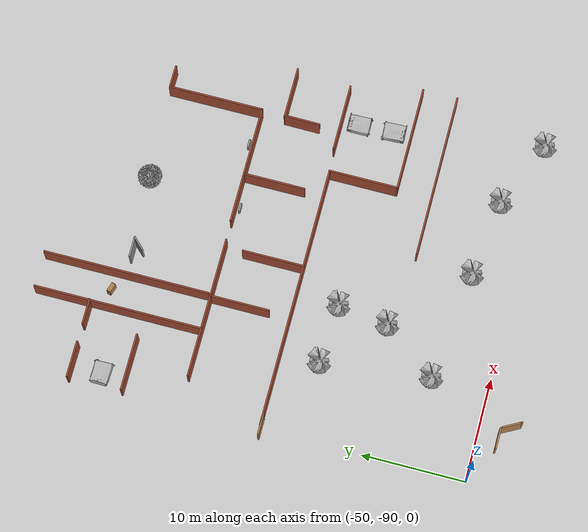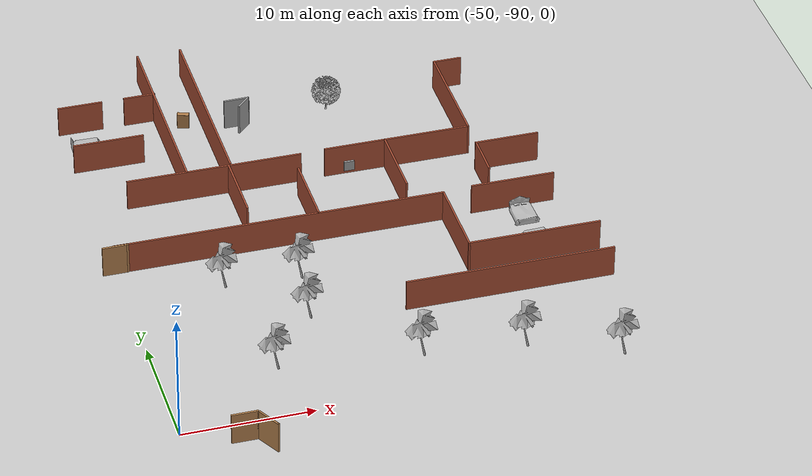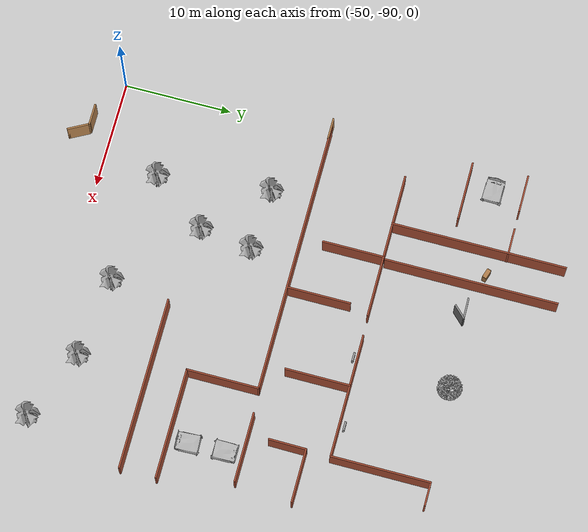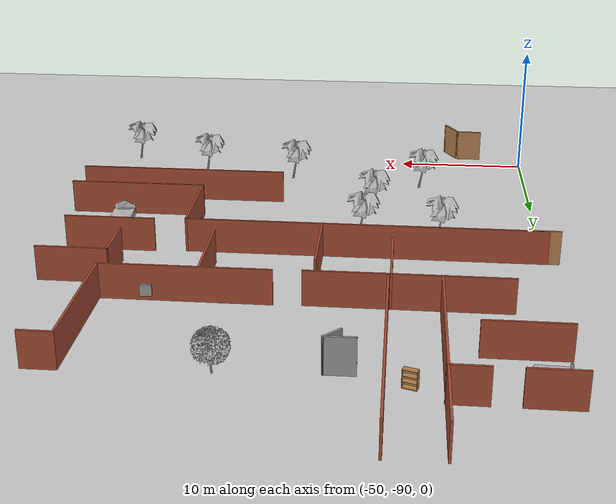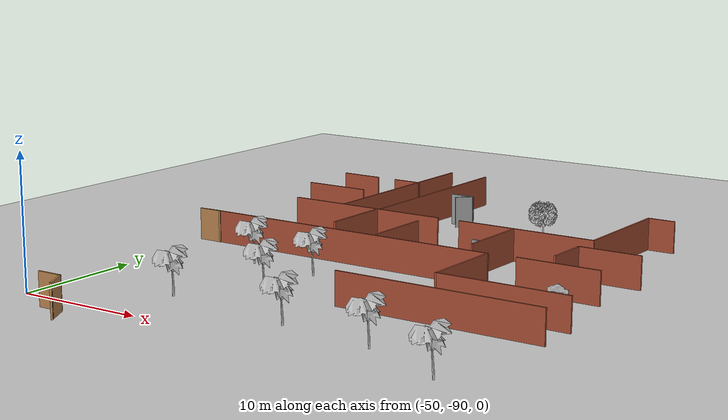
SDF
<sdf version="1.6">
 <world name="default">
  <model name="map_palace_v2_model_1_0">
   <pose>-3.1e-05 -55 0 0 -0 3.14</pose>
   <link name="Wall_225">
    <collision name="Wall_225_Collision">
     <geometry><box><size>6.5 0.15 2.5</size></box></geometry>
     <pose>0 0 1.25 0 -0 0</pose>
    </collision>
    <visual name="Wall_225_Visual">
     <pose>0 0 1.25 0 -0 0</pose>
     <geometry><box><size>6.5 0.15 2.5</size></box></geometry>
     <material>
      <script><uri>file://media/materials/scripts/gazebo.material</uri><name>Gazebo/Bricks</name></script>
      <ambient>1 1 1 1</ambient>
     </material>
     <meta><layer>0</layer></meta>
    </visual>
    <pose>19.2415 15.308 0 0 -0 0</pose>
   </link>
   <link name="Wall_229">
    <collision name="Wall_229_Collision">
     <geometry><box><size>5 0.15 2.5</size></box></geometry>
     <pose>0 0 1.25 0 -0 0</pose>
    </collision>
    <visual name="Wall_229_Visual">
     <pose>0 0 1.25 0 -0 0</pose>
     <geometry><box><size>5 0.15 2.5</size></box></geometry>
     <material>
      <script><uri>file://media/materials/scripts/gazebo.material</uri><name>Gazebo/Bricks</name></script>
      <ambient>1 1 1 1</ambient>
     </material>
     <meta><layer>0</layer></meta>
    </visual>
    <pose>18.0475 9.99625 0 0 -0 3.14159</pose>
   </link>
   <link name="Wall_231">
    <collision name="Wall_231_Collision">
     <geometry><box><size>3.52576 0.15 2.5</size></box></geometry>
     <pose>0 0 1.25 0 -0 0</pose>
    </collision>
    <visual name="Wall_231_Visual">
     <pose>0 0 1.25 0 -0 0</pose>
     <geometry><box><size>3.52576 0.15 2.5</size></box></geometry>
     <material>
      <script><uri>file://media/materials/scripts/gazebo.material</uri><name>Gazebo/Bricks</name></script>
      <ambient>1 1 1 1</ambient>
     </material>
     <meta><layer>0</layer></meta>
    </visual>
    <pose>20.49 11.684 0 0 -0 -1.58116</pose>
   </link>
   <link name="Wall_244">
    <collision name="Wall_244_Collision">
     <geometry><box><size>6 0.15 2.5</size></box></geometry>
     <pose>0 0 1.25 0 -0 0</pose>
    </collision>
    <visual name="Wall_244_Visual">
     <pose>0 0 1.25 0 -0 0</pose>
     <geometry><box><size>6 0.15 2.5</size></box></geometry>
     <material>
      <script><uri>file://media/materials/scripts/gazebo.material</uri><name>Gazebo/Bricks</name></script>
      <ambient>1 1 1 1</ambient>
     </material>
     <meta><layer>0</layer></meta>
    </visual>
    <pose>27.0679 10.7157 0 0 -0 1.5708</pose>
   </link>
   <link name="Wall_246">
    <collision name="Wall_246_Collision">
     <geometry><box><size>6 0.15 2.5</size></box></geometry>
     <pose>0 0 1.25 0 -0 0</pose>
    </collision>
    <visual name="Wall_246_Visual">
     <pose>0 0 1.25 0 -0 0</pose>
     <geometry><box><size>6 0.15 2.5</size></box></geometry>
     <material>
      <script><uri>file://media/materials/scripts/gazebo.material</uri><name>Gazebo/Bricks</name></script>
      <ambient>1 1 1 1</ambient>
     </material>
     <meta><layer>0</layer></meta>
    </visual>
    <pose>34.4057 12.5718 0 0 -0 -1.5708</pose>
   </link>
   <link name="Wall_249">
    <collision name="Wall_249_Collision">
     <geometry><box><size>5.75 0.15 2.5</size></box></geometry>
     <pose>0 0 1.25 0 -0 0</pose>
    </collision>
    <visual name="Wall_249_Visual">
     <pose>0 0 1.25 0 -0 0</pose>
     <geometry><box><size>5.75 0.15 2.5</size></box></geometry>
     <material>
      <script><uri>file://media/materials/scripts/gazebo.material</uri><name>Gazebo/Bricks</name></script>
      <ambient>1 1 1 1</ambient>
     </material>
     <meta><layer>0</layer></meta>
    </visual>
    <pose>39.3766 10.6453 0 0 -0 -1.5708</pose>
   </link>
   <link name="Wall_250">
    <collision name="Wall_250_Collision">
     <geometry><box><size>5.75 0.15 2.5</size></box></geometry>
     <pose>0 0 1.25 0 -0 0</pose>
    </collision>
    <visual name="Wall_250_Visual">
     <pose>0 0 1.25 0 -0 0</pose>
     <geometry><box><size>5.75 0.15 2.5</size></box></geometry>
     <material>
      <script><uri>file://media/materials/scripts/gazebo.material</uri><name>Gazebo/Bricks</name></script>
      <ambient>1 1 1 1</ambient>
     </material>
     <meta><layer>0</layer></meta>
    </visual>
    <pose>36.5766 7.84533 0 0 -0 3.14159</pose>
   </link>
   <link name="Wall_252">
    <collision name="Wall_252_Collision">
     <geometry><box><size>8 0.15 2.5</size></box></geometry>
     <pose>0 0 1.25 0 -0 0</pose>
    </collision>
    <visual name="Wall_252_Visual">
     <pose>0 0 1.25 0 -0 0</pose>
     <geometry><box><size>8 0.15 2.5</size></box></geometry>
     <material>
      <script><uri>file://media/materials/scripts/gazebo.material</uri><name>Gazebo/Bricks</name></script>
      <ambient>1 1 1 1</ambient>
     </material>
     <meta><layer>0</layer></meta>
    </visual>
    <pose>43.3016 7.84533 0 0 -0 0</pose>
   </link>
   <link name="Wall_254">
    <collision name="Wall_254_Collision">
     <geometry><box><size>16.25 0.15 2.5</size></box></geometry>
     <pose>0 0 1.25 0 -0 0</pose>
    </collision>
    <visual name="Wall_254_Visual">
     <pose>0 0 1.25 0 -0 0</pose>
     <geometry><box><size>16.25 0.15 2.5</size></box></geometry>
     <material>
      <script><uri>file://media/materials/scripts/gazebo.material</uri><name>Gazebo/Bricks</name></script>
      <ambient>1 1 1 1</ambient>
     </material>
     <meta><layer>0</layer></meta>
    </visual>
    <pose>42.6348 -0.208459 0 0 -0 -1.5708</pose>
   </link>
   <link name="Wall_256">
    <collision name="Wall_256_Collision">
     <geometry><box><size>16.0526 0.15 2.5</size></box></geometry>
     <pose>0 0 1.25 0 -0 0</pose>
    </collision>
    <visual name="Wall_256_Visual">
     <pose>0 0 1.25 0 -0 0</pose>
     <geometry><box><size>16.0526 0.15 2.5</size></box></geometry>
     <material>
      <script><uri>file://media/materials/scripts/gazebo.material</uri><name>Gazebo/Bricks</name></script>
      <ambient>1 1 1 1</ambient>
     </material>
     <meta><layer>0</layer></meta>
    </visual>
    <pose>39.1948 -0.349759 0 0 -0 -1.5708</pose>
   </link>
   <link name="Wall_258">
    <collision name="Wall_258_Collision">
     <geometry><box><size>5.5 0.15 2.5</size></box></geometry>
     <pose>0 0 1.25 0 -0 0</pose>
    </collision>
    <visual name="Wall_258_Visual">
     <pose>0 0 1.25 0 -0 0</pose>
     <geometry><box><size>5.5 0.15 2.5</size></box></geometry>
     <material>
      <script><uri>file://media/materials/scripts/gazebo.material</uri><name>Gazebo/Bricks</name></script>
      <ambient>1 1 1 1</ambient>
     </material>
     <meta><layer>0</layer></meta>
    </visual>
    <pose>47.3998 2.24154 0 0 -0 3.14159</pose>
   </link>
   <link name="Wall_264">
    <collision name="Wall_264_Collision">
     <geometry><box><size>2.5 0.15 2.5</size></box></geometry>
     <pose>0 0 1.25 0 -0 0</pose>
    </collision>
    <visual name="Wall_264_Visual">
     <pose>0 0 1.25 0 -0 0</pose>
     <geometry><box><size>2.5 0.15 2.5</size></box></geometry>
     <material>
      <script><uri>file://media/materials/scripts/gazebo.material</uri><name>Gazebo/Bricks</name></script>
      <ambient>1 1 1 1</ambient>
     </material>
     <meta><layer>0</layer></meta>
    </visual>
    <pose>43.7673 -2.92852 0 0 -0 0</pose>
   </link>
   <link name="Wall_266">
    <collision name="Wall_266_Collision">
     <geometry><box><size>3.5 0.15 2.5</size></box></geometry>
     <pose>0 0 1.25 0 -0 0</pose>
    </collision>
    <visual name="Wall_266_Visual">
     <pose>0 0 1.25 0 -0 0</pose>
     <geometry><box><size>3.5 0.15 2.5</size></box></geometry>
     <material>
      <script><uri>file://media/materials/scripts/gazebo.material</uri><name>Gazebo/Bricks</name></script>
      <ambient>1 1 1 1</ambient>
     </material>
     <meta><layer>0</layer></meta>
    </visual>
    <pose>48.4673 -2.92852 0 0 -0 0</pose>
   </link>
   <link name="Wall_29">
    <collision name="Wall_29_Collision">
     <geometry><box><size>2.25 0.15 2.5</size></box></geometry>
     <pose>0 0 1.25 0 -0 0</pose>
    </collision>
    <visual name="Wall_29_Visual">
     <pose>0 0 1.25 0 -0 0</pose>
     <geometry><box><size>2.25 0.15 2.5</size></box></geometry>
     <material>
      <script><uri>file://media/materials/scripts/gazebo.material</uri><name>Gazebo/Bricks</name></script>
      <ambient>1 1 1 1</ambient>
     </material>
     <meta><layer>0</layer></meta>
    </visual>
    <pose>19.3807 -1.35254 0 0 -0 0</pose>
   </link>
   <link name="Wall_30">
    <collision name="Wall_30_Collision">
     <geometry><box><size>9.25 0.15 2.5</size></box></geometry>
     <pose>0 0 1.25 0 -0 0</pose>
    </collision>
    <visual name="Wall_30_Visual">
     <pose>0 0 1.25 0 -0 0</pose>
     <geometry><box><size>9.25 0.15 2.5</size></box></geometry>
     <material>
      <script><uri>file://media/materials/scripts/gazebo.material</uri><name>Gazebo/Bricks</name></script>
      <ambient>1 1 1 1</ambient>
     </material>
     <meta><layer>0</layer></meta>
    </visual>
    <pose>20.4307 3.19746 0 0 -0 1.5708</pose>
   </link>
   <link name="Wall_31">
    <collision name="Wall_31_Collision">
     <geometry><box><size>11.5 0.15 2.5</size></box></geometry>
     <pose>0 0 1.25 0 -0 0</pose>
    </collision>
    <visual name="Wall_31_Visual">
     <pose>0 0 1.25 0 -0 0</pose>
     <geometry><box><size>11.5 0.15 2.5</size></box></geometry>
     <material>
      <script><uri>file://media/materials/scripts/gazebo.material</uri><name>Gazebo/Bricks</name></script>
      <ambient>1 1 1 1</ambient>
     </material>
     <meta><layer>0</layer></meta>
    </visual>
    <pose>26.1057 7.74746 0 0 -0 0</pose>
   </link>
   <link name="Wall_37">
    <collision name="Wall_37_Collision">
     <geometry><box><size>25.5 0.15 2.5</size></box></geometry>
     <pose>0 0 1.25 0 -0 0</pose>
    </collision>
    <visual name="Wall_37_Visual">
     <pose>0 0 1.25 0 -0 0</pose>
     <geometry><box><size>25.5 0.15 2.5</size></box></geometry>
     <material>
      <script><uri>file://media/materials/scripts/gazebo.material</uri><name>Gazebo/Bricks</name></script>
      <ambient>1 1 1 1</ambient>
     </material>
     <meta><layer>0</layer></meta>
    </visual>
    <pose>37.4057 15.4975 0 0 -0 3.14159</pose>
   </link>
   <link name="Wall_38">
    <collision name="Wall_38_Collision">
     <geometry><box><size>6.75 0.15 2.5</size></box></geometry>
     <pose>0 0 1.25 0 -0 0</pose>
    </collision>
    <visual name="Wall_38_Visual">
     <pose>0 0 1.25 0 -0 0</pose>
     <geometry><box><size>6.75 0.15 2.5</size></box></geometry>
     <material>
      <script><uri>file://media/materials/scripts/gazebo.material</uri><name>Gazebo/Bricks</name></script>
      <ambient>1 1 1 1</ambient>
     </material>
     <meta><layer>0</layer></meta>
    </visual>
    <pose>24.7307 18.7975 0 0 -0 1.5708</pose>
   </link>
   <link name="Wall_39">
    <collision name="Wall_39_Collision">
     <geometry><box><size>10.25 0.15 2.5</size></box></geometry>
     <pose>0 0 1.25 0 -0 0</pose>
    </collision>
    <visual name="Wall_39_Visual">
     <pose>0 0 1.25 0 -0 0</pose>
     <geometry><box><size>10.25 0.15 2.5</size></box></geometry>
     <material>
      <script><uri>file://media/materials/scripts/gazebo.material</uri><name>Gazebo/Bricks</name></script>
      <ambient>1 1 1 1</ambient>
     </material>
     <meta><layer>0</layer></meta>
    </visual>
    <pose>19.6807 22.0975 0 0 -0 3.14159</pose>
   </link>
   <link name="Wall_47">
    <collision name="Wall_47_Collision">
     <geometry><box><size>16 0.15 2.5</size></box></geometry>
     <pose>0 0 1.25 0 -0 0</pose>
    </collision>
    <visual name="Wall_47_Visual">
     <pose>0 0 1.25 0 -0 0</pose>
     <geometry><box><size>16 0.15 2.5</size></box></geometry>
     <material>
      <script><uri>file://media/materials/scripts/gazebo.material</uri><name>Gazebo/Bricks</name></script>
      <ambient>1 1 1 1</ambient>
     </material>
     <meta><layer>0</layer></meta>
    </visual>
    <pose>22.5557 25.4475 0 0 -0 0</pose>
   </link>
   <link name="Window_8">
    <collision name="Window_8_Collision">
     <geometry><box><size>0.8 0.17 0.8</size></box></geometry>
     <pose>0 0 0.4 0 -0 0</pose>
    </collision>
    <visual name="Window_8_Visual">
     <pose>0 0 0.4 0 -0 0</pose>
     <geometry><box><size>0.8 0.17 0.8</size></box></geometry>
     <material>
      <script><uri>file://media/materials/scripts/gazebo.material</uri><name>Gazebo/Grey</name></script>
     </material>
    </visual>
    <pose>23.6652 7.30334 0.5 0 -0 0</pose>
   </link>
   <link name="Window_9">
    <collision name="Window_9_Collision">
     <geometry><box><size>0.8 0.17 0.8</size></box></geometry>
     <pose>0 0 0.4 0 -0 0</pose>
    </collision>
    <visual name="Window_9_Visual">
     <pose>0 0 0.4 0 -0 0</pose>
     <geometry><box><size>0.8 0.17 0.8</size></box></geometry>
     <material>
      <script><uri>file://media/materials/scripts/gazebo.material</uri><name>Gazebo/Grey</name></script>
     </material>
    </visual>
    <pose>30.0132 8.14974 0.5 0 -0 0</pose>
   </link>
   <static>1</static>
  </model>
  <model name="bed2_1">
   <link name="link_1">
    <inertial>
     <mass>1</mass>
     <inertia>
      <ixx>0.166667</ixx>
      <ixy>0</ixy>
      <ixz>0</ixz>
      <iyy>0.166667</iyy>
      <iyz>0</iyz>
      <izz>0.166667</izz>
     </inertia>
    </inertial>
    <visual name="visual">
     <pose>0 0 0 1.57 -0 0</pose>
     <geometry><mesh><uri>model://bed2/bed3.obj</uri><scale>1 1 1</scale></mesh></geometry>
    </visual>
    <collision name="collision">
     <pose>0 0 0 1.57 -0 0</pose>
     <geometry><mesh><uri>model://bed2/bed3.obj</uri><scale>1 1 1</scale></mesh></geometry>
     <surface>
      <friction>
       <ode><mu>1</mu><mu2>1</mu2><fdir1>0 0 0</fdir1><slip1>0</slip1><slip2>0</slip2></ode>
       <torsional>
        <coefficient>1</coefficient>
        <patch_radius>0</patch_radius>
        <surface_radius>0</surface_radius>
        <use_patch_radius>1</use_patch_radius>
        <ode><slip>0</slip></ode>
       </torsional>
      </friction>
      <bounce><restitution_coefficient>0</restitution_coefficient><threshold>1e+06</threshold></bounce>
      <contact>
       <collide_without_contact>0</collide_without_contact>
       <collide_without_contact_bitmask>1</collide_without_contact_bitmask>
       <collide_bitmask>1</collide_bitmask>
       <ode>
        <soft_cfm>0</soft_cfm>
        <soft_erp>0.2</soft_erp>
        <kp>1e+13</kp>
        <kd>1</kd>
        <max_vel>0.01</max_vel>
        <min_depth>0</min_depth>
       </ode>
       <bullet>
        <split_impulse>1</split_impulse>
        <split_impulse_penetration_threshold>-0.01</split_impulse_penetration_threshold>
        <soft_cfm>0</soft_cfm>
        <soft_erp>0.2</soft_erp>
        <kp>1e+13</kp>
        <kd>1</kd>
       </bullet>
      </contact>
     </surface>
    </collision>
   </link>
   <static>1</static>
   <pose>-49.6696 -54.6873 0 0 -0 1.5453</pose>
  </model>
  <model name="bed2_6">
   <link name="link_1">
    <inertial>
     <mass>1</mass>
     <inertia>
      <ixx>0.166667</ixx>
      <ixy>0</ixy>
      <ixz>0</ixz>
      <iyy>0.166667</iyy>
      <iyz>0</iyz>
      <izz>0.166667</izz>
     </inertia>
    </inertial>
    <visual name="visual">
     <pose>0 0 0 1.57 -0 0</pose>
     <geometry><mesh><uri>model://bed2/bed3.obj</uri><scale>1 1 1</scale></mesh></geometry>
    </visual>
    <collision name="collision">
     <pose>0 0 0 1.57 -0 0</pose>
     <geometry><mesh><uri>model://bed2/bed3.obj</uri><scale>1 1 1</scale></mesh></geometry>
     <surface>
      <friction>
       <ode><mu>1</mu><mu2>1</mu2><fdir1>0 0 0</fdir1><slip1>0</slip1><slip2>0</slip2></ode>
       <torsional>
        <coefficient>1</coefficient>
        <patch_radius>0</patch_radius>
        <surface_radius>0</surface_radius>
        <use_patch_radius>1</use_patch_radius>
        <ode><slip>0</slip></ode>
       </torsional>
      </friction>
      <bounce><restitution_coefficient>0</restitution_coefficient><threshold>1e+06</threshold></bounce>
      <contact>
       <collide_without_contact>0</collide_without_contact>
       <collide_without_contact_bitmask>1</collide_without_contact_bitmask>
       <collide_bitmask>1</collide_bitmask>
       <ode>
        <soft_cfm>0</soft_cfm>
        <soft_erp>0.2</soft_erp>
        <kp>1e+13</kp>
        <kd>1</kd>
        <max_vel>0.01</max_vel>
        <min_depth>0</min_depth>
       </ode>
       <bullet>
        <split_impulse>1</split_impulse>
        <split_impulse_penetration_threshold>-0.01</split_impulse_penetration_threshold>
        <soft_cfm>0</soft_cfm>
        <soft_erp>0.2</soft_erp>
        <kp>1e+13</kp>
        <kd>1</kd>
       </bullet>
      </contact>
     </surface>
    </collision>
   </link>
   <static>1</static>
   <pose>-18.7622 -76.3849 0 0 0 -3.10855</pose>
  </model>
  <model name="bed2_7">
   <link name="link_1">
    <inertial>
     <mass>1</mass>
     <inertia>
      <ixx>0.166667</ixx>
      <ixy>0</ixy>
      <ixz>0</ixz>
      <iyy>0.166667</iyy>
      <iyz>0</iyz>
      <izz>0.166667</izz>
     </inertia>
    </inertial>
    <visual name="visual">
     <pose>0 0 0 1.57 -0 0</pose>
     <geometry><mesh><uri>model://bed2/bed3.obj</uri><scale>1 1 1</scale></mesh></geometry>
    </visual>
    <collision name="collision">
     <pose>0 0 0 1.57 -0 0</pose>
     <geometry><mesh><uri>model://bed2/bed3.obj</uri><scale>1 1 1</scale></mesh></geometry>
     <surface>
      <friction>
       <ode><mu>1</mu><mu2>1</mu2><fdir1>0 0 0</fdir1><slip1>0</slip1><slip2>0</slip2></ode>
       <torsional>
        <coefficient>1</coefficient>
        <patch_radius>0</patch_radius>
        <surface_radius>0</surface_radius>
        <use_patch_radius>1</use_patch_radius>
        <ode><slip>0</slip></ode>
       </torsional>
      </friction>
      <bounce><restitution_coefficient>0</restitution_coefficient><threshold>1e+06</threshold></bounce>
      <contact>
       <collide_without_contact>0</collide_without_contact>
       <collide_without_contact_bitmask>1</collide_without_contact_bitmask>
       <collide_bitmask>1</collide_bitmask>
       <ode>
        <soft_cfm>0</soft_cfm>
        <soft_erp>0.2</soft_erp>
        <kp>1e+13</kp>
        <kd>1</kd>
        <max_vel>0.01</max_vel>
        <min_depth>0</min_depth>
       </ode>
       <bullet>
        <split_impulse>1</split_impulse>
        <split_impulse_penetration_threshold>-0.01</split_impulse_penetration_threshold>
        <soft_cfm>0</soft_cfm>
        <soft_erp>0.2</soft_erp>
        <kp>1e+13</kp>
        <kd>1</kd>
       </bullet>
      </contact>
     </surface>
    </collision>
   </link>
   <static>1</static>
   <pose>-18.8916 -70.9218 0 0 -0 0</pose>
  </model>
  <model name="bookshelf_clone">
   <static>1</static>
   <link name="link">
    <inertial><mass>1</mass></inertial>
    <collision name="back">
     <pose>0 0.005 0.6 0 -0 0</pose>
     <geometry><box><size>0.9 0.01 1.2</size></box></geometry>
    </collision>
    <visual name="visual1">
     <pose>0 0.005 0.6 0 -0 0</pose>
     <geometry><box><size>0.9 0.01 1.2</size></box></geometry>
     <material>
      <script><uri>file://media/materials/scripts/gazebo.material</uri><name>Gazebo/Wood</name></script>
     </material>
    </visual>
    <collision name="left_side">
     <pose>0.45 -0.195 0.6 0 -0 0</pose>
     <geometry><box><size>0.02 0.4 1.2</size></box></geometry>
    </collision>
    <visual name="visual2">
     <pose>0.45 -0.195 0.6 0 -0 0</pose>
     <geometry><box><size>0.02 0.4 1.2</size></box></geometry>
     <material>
      <script><uri>file://media/materials/scripts/gazebo.material</uri><name>Gazebo/Wood</name></script>
     </material>
    </visual>
    <collision name="right_side">
     <pose>-0.45 -0.195 0.6 0 -0 0</pose>
     <geometry><box><size>0.02 0.4 1.2</size></box></geometry>
    </collision>
    <visual name="visual3">
     <pose>-0.45 -0.195 0.6 0 -0 0</pose>
     <geometry><box><size>0.02 0.4 1.2</size></box></geometry>
     <material>
      <script><uri>file://media/materials/scripts/gazebo.material</uri><name>Gazebo/Wood</name></script>
     </material>
    </visual>
    <collision name="bottom">
     <pose>0 -0.195 0.03 0 -0 0</pose>
     <geometry><box><size>0.88 0.4 0.06</size></box></geometry>
    </collision>
    <visual name="visual4">
     <pose>0 -0.195 0.03 0 -0 0</pose>
     <geometry><box><size>0.88 0.4 0.06</size></box></geometry>
     <material>
      <script><uri>file://media/materials/scripts/gazebo.material</uri><name>Gazebo/Wood</name></script>
     </material>
    </visual>
    <collision name="top">
     <pose>0 -0.195 1.19 0 -0 0</pose>
     <geometry><box><size>0.88 0.4 0.02</size></box></geometry>
    </collision>
    <visual name="visual5">
     <pose>0 -0.195 1.19 0 -0 0</pose>
     <geometry><box><size>0.88 0.4 0.02</size></box></geometry>
     <material>
      <script><uri>file://media/materials/scripts/gazebo.material</uri><name>Gazebo/Wood</name></script>
     </material>
    </visual>
    <collision name="low_shelf">
     <pose>0 -0.195 0.43 0 -0 0</pose>
     <geometry><box><size>0.88 0.4 0.02</size></box></geometry>
    </collision>
    <visual name="visual6">
     <pose>0 -0.195 0.43 0 -0 0</pose>
     <geometry><box><size>0.88 0.4 0.02</size></box></geometry>
     <material>
      <script><uri>file://media/materials/scripts/gazebo.material</uri><name>Gazebo/Wood</name></script>
     </material>
    </visual>
    <collision name="high_shelf">
     <pose>0 -0.195 0.8 0 -0 0</pose>
     <geometry><box><size>0.88 0.4 0.02</size></box></geometry>
    </collision>
    <visual name="visual7">
     <pose>0 -0.195 0.8 0 -0 0</pose>
     <geometry><box><size>0.88 0.4 0.02</size></box></geometry>
     <material>
      <script><uri>file://media/materials/scripts/gazebo.material</uri><name>Gazebo/Wood</name></script>
     </material>
    </visual>
   </link>
   <pose>-40.7205 -53.6243 0 0 -0 2.8249</pose>
  </model>
  <model name="tree3_clone_10">
   <link name="link_1">
    <inertial>
     <mass>1</mass>
     <inertia>
      <ixx>0.166667</ixx>
      <ixy>0</ixy>
      <ixz>0</ixz>
      <iyy>0.166667</iyy>
      <iyz>0</iyz>
      <izz>0.166667</izz>
     </inertia>
    </inertial>
    <visual name="visual">
     <geometry><mesh><uri>model://tree3/Palmera.obj</uri><scale>1 1 1</scale></mesh></geometry>
    </visual>
    <collision name="collision">
     <geometry><mesh><uri>model://tree3/Palmera.obj</uri><scale>1 1 1</scale></mesh></geometry>
     <surface>
      <friction>
       <ode><mu>1</mu><mu2>1</mu2><fdir1>0 0 0</fdir1><slip1>0</slip1><slip2>0</slip2></ode>
       <torsional>
        <coefficient>1</coefficient>
        <patch_radius>0</patch_radius>
        <surface_radius>0</surface_radius>
        <use_patch_radius>1</use_patch_radius>
        <ode><slip>0</slip></ode>
       </torsional>
      </friction>
      <bounce><restitution_coefficient>0</restitution_coefficient><threshold>1e+06</threshold></bounce>
      <contact>
       <collide_without_contact>0</collide_without_contact>
       <collide_without_contact_bitmask>1</collide_without_contact_bitmask>
       <collide_bitmask>1</collide_bitmask>
       <ode>
        <soft_cfm>0</soft_cfm>
        <soft_erp>0.2</soft_erp>
        <kp>1e+13</kp>
        <kd>1</kd>
        <max_vel>0.01</max_vel>
        <min_depth>0</min_depth>
       </ode>
       <bullet>
        <split_impulse>1</split_impulse>
        <split_impulse_penetration_threshold>-0.01</split_impulse_penetration_threshold>
        <soft_cfm>0</soft_cfm>
        <soft_erp>0.2</soft_erp>
        <kp>1e+13</kp>
        <kd>1</kd>
       </bullet>
      </contact>
     </surface>
    </collision>
   </link>
   <static>1</static>
   <pose>-36.8689 -74.6078 0 0 -0 0</pose>
  </model>
  <model name="tree3_clone_10">
   <link name="link_1">
    <inertial>
     <mass>1</mass>
     <inertia>
      <ixx>0.166667</ixx>
      <ixy>0</ixy>
      <ixz>0</ixz>
      <iyy>0.166667</iyy>
      <iyz>0</iyz>
      <izz>0.166667</izz>
     </inertia>
    </inertial>
    <visual name="visual">
     <geometry><mesh><uri>model://tree3/Palmera.obj</uri><scale>1 1 1</scale></mesh></geometry>
    </visual>
    <collision name="collision">
     <geometry><mesh><uri>model://tree3/Palmera.obj</uri><scale>1 1 1</scale></mesh></geometry>
     <surface>
      <friction>
       <ode><mu>1</mu><mu2>1</mu2><fdir1>0 0 0</fdir1><slip1>0</slip1><slip2>0</slip2></ode>
       <torsional>
        <coefficient>1</coefficient>
        <patch_radius>0</patch_radius>
        <surface_radius>0</surface_radius>
        <use_patch_radius>1</use_patch_radius>
        <ode><slip>0</slip></ode>
       </torsional>
      </friction>
      <bounce><restitution_coefficient>0</restitution_coefficient><threshold>1e+06</threshold></bounce>
      <contact>
       <collide_without_contact>0</collide_without_contact>
       <collide_without_contact_bitmask>1</collide_without_contact_bitmask>
       <collide_bitmask>1</collide_bitmask>
       <ode>
        <soft_cfm>0</soft_cfm>
        <soft_erp>0.2</soft_erp>
        <kp>1e+13</kp>
        <kd>1</kd>
        <max_vel>0.01</max_vel>
        <min_depth>0</min_depth>
       </ode>
       <bullet>
        <split_impulse>1</split_impulse>
        <split_impulse_penetration_threshold>-0.01</split_impulse_penetration_threshold>
        <soft_cfm>0</soft_cfm>
        <soft_erp>0.2</soft_erp>
        <kp>1e+13</kp>
        <kd>1</kd>
       </bullet>
      </contact>
     </surface>
    </collision>
   </link>
   <static>1</static>
   <pose>-36.8689 -74.6078 0 0 -0 0</pose>
  </model>
  <model name="tree3_clone_10">
   <link name="link_1">
    <inertial>
     <mass>1</mass>
     <inertia>
      <ixx>0.166667</ixx>
      <ixy>0</ixy>
      <ixz>0</ixz>
      <iyy>0.166667</iyy>
      <iyz>0</iyz>
      <izz>0.166667</izz>
     </inertia>
    </inertial>
    <visual name="visual">
     <geometry><mesh><uri>model://tree3/Palmera.obj</uri><scale>1 1 1</scale></mesh></geometry>
    </visual>
    <collision name="collision">
     <geometry><mesh><uri>model://tree3/Palmera.obj</uri><scale>1 1 1</scale></mesh></geometry>
     <surface>
      <friction>
       <ode><mu>1</mu><mu2>1</mu2><fdir1>0 0 0</fdir1><slip1>0</slip1><slip2>0</slip2></ode>
       <torsional>
        <coefficient>1</coefficient>
        <patch_radius>0</patch_radius>
        <surface_radius>0</surface_radius>
        <use_patch_radius>1</use_patch_radius>
        <ode><slip>0</slip></ode>
       </torsional>
      </friction>
      <bounce><restitution_coefficient>0</restitution_coefficient><threshold>1e+06</threshold></bounce>
      <contact>
       <collide_without_contact>0</collide_without_contact>
       <collide_without_contact_bitmask>1</collide_without_contact_bitmask>
       <collide_bitmask>1</collide_bitmask>
       <ode>
        <soft_cfm>0</soft_cfm>
        <soft_erp>0.2</soft_erp>
        <kp>1e+13</kp>
        <kd>1</kd>
        <max_vel>0.01</max_vel>
        <min_depth>0</min_depth>
       </ode>
       <bullet>
        <split_impulse>1</split_impulse>
        <split_impulse_penetration_threshold>-0.01</split_impulse_penetration_threshold>
        <soft_cfm>0</soft_cfm>
        <soft_erp>0.2</soft_erp>
        <kp>1e+13</kp>
        <kd>1</kd>
       </bullet>
      </contact>
     </surface>
    </collision>
   </link>
   <static>1</static>
   <pose>-36.8689 -74.6078 0 0 -0 0</pose>
  </model>
  <model name="tree3_clone_11">
   <link name="link_1">
    <inertial>
     <mass>1</mass>
     <inertia>
      <ixx>0.166667</ixx>
      <ixy>0</ixy>
      <ixz>0</ixz>
      <iyy>0.166667</iyy>
      <iyz>0</iyz>
      <izz>0.166667</izz>
     </inertia>
    </inertial>
    <visual name="visual">
     <geometry><mesh><uri>model://tree3/Palmera.obj</uri><scale>1 1 1</scale></mesh></geometry>
    </visual>
    <collision name="collision">
     <geometry><mesh><uri>model://tree3/Palmera.obj</uri><scale>1 1 1</scale></mesh></geometry>
     <surface>
      <friction>
       <ode><mu>1</mu><mu2>1</mu2><fdir1>0 0 0</fdir1><slip1>0</slip1><slip2>0</slip2></ode>
       <torsional>
        <coefficient>1</coefficient>
        <patch_radius>0</patch_radius>
        <surface_radius>0</surface_radius>
        <use_patch_radius>1</use_patch_radius>
        <ode><slip>0</slip></ode>
       </torsional>
      </friction>
      <bounce><restitution_coefficient>0</restitution_coefficient><threshold>1e+06</threshold></bounce>
      <contact>
       <collide_without_contact>0</collide_without_contact>
       <collide_without_contact_bitmask>1</collide_without_contact_bitmask>
       <collide_bitmask>1</collide_bitmask>
       <ode>
        <soft_cfm>0</soft_cfm>
        <soft_erp>0.2</soft_erp>
        <kp>1e+13</kp>
        <kd>1</kd>
        <max_vel>0.01</max_vel>
        <min_depth>0</min_depth>
       </ode>
       <bullet>
        <split_impulse>1</split_impulse>
        <split_impulse_penetration_threshold>-0.01</split_impulse_penetration_threshold>
        <soft_cfm>0</soft_cfm>
        <soft_erp>0.2</soft_erp>
        <kp>1e+13</kp>
        <kd>1</kd>
       </bullet>
      </contact>
     </surface>
    </collision>
   </link>
   <static>1</static>
   <pose>-42.6003 -74.2321 0 0 -0 0</pose>
  </model>
  <model name="tree3_clone_11">
   <link name="link_1">
    <inertial>
     <mass>1</mass>
     <inertia>
      <ixx>0.166667</ixx>
      <ixy>0</ixy>
      <ixz>0</ixz>
      <iyy>0.166667</iyy>
      <iyz>0</iyz>
      <izz>0.166667</izz>
     </inertia>
    </inertial>
    <visual name="visual">
     <geometry><mesh><uri>model://tree3/Palmera.obj</uri><scale>1 1 1</scale></mesh></geometry>
    </visual>
    <collision name="collision">
     <geometry><mesh><uri>model://tree3/Palmera.obj</uri><scale>1 1 1</scale></mesh></geometry>
     <surface>
      <friction>
       <ode><mu>1</mu><mu2>1</mu2><fdir1>0 0 0</fdir1><slip1>0</slip1><slip2>0</slip2></ode>
       <torsional>
        <coefficient>1</coefficient>
        <patch_radius>0</patch_radius>
        <surface_radius>0</surface_radius>
        <use_patch_radius>1</use_patch_radius>
        <ode><slip>0</slip></ode>
       </torsional>
      </friction>
      <bounce><restitution_coefficient>0</restitution_coefficient><threshold>1e+06</threshold></bounce>
      <contact>
       <collide_without_contact>0</collide_without_contact>
       <collide_without_contact_bitmask>1</collide_without_contact_bitmask>
       <collide_bitmask>1</collide_bitmask>
       <ode>
        <soft_cfm>0</soft_cfm>
        <soft_erp>0.2</soft_erp>
        <kp>1e+13</kp>
        <kd>1</kd>
        <max_vel>0.01</max_vel>
        <min_depth>0</min_depth>
       </ode>
       <bullet>
        <split_impulse>1</split_impulse>
        <split_impulse_penetration_threshold>-0.01</split_impulse_penetration_threshold>
        <soft_cfm>0</soft_cfm>
        <soft_erp>0.2</soft_erp>
        <kp>1e+13</kp>
        <kd>1</kd>
       </bullet>
      </contact>
     </surface>
    </collision>
   </link>
   <static>1</static>
   <pose>-42.6003 -74.2321 0 0 -0 0</pose>
  </model>
  <model name="tree3_clone_13">
   <link name="link_1">
    <inertial>
     <mass>1</mass>
     <inertia>
      <ixx>0.166667</ixx>
      <ixy>0</ixy>
      <ixz>0</ixz>
      <iyy>0.166667</iyy>
      <iyz>0</iyz>
      <izz>0.166667</izz>
     </inertia>
    </inertial>
    <visual name="visual">
     <geometry><mesh><uri>model://tree3/Palmera.obj</uri><scale>1 1 1</scale></mesh></geometry>
    </visual>
    <collision name="collision">
     <geometry><mesh><uri>model://tree3/Palmera.obj</uri><scale>1 1 1</scale></mesh></geometry>
     <surface>
      <friction>
       <ode><mu>1</mu><mu2>1</mu2><fdir1>0 0 0</fdir1><slip1>0</slip1><slip2>0</slip2></ode>
       <torsional>
        <coefficient>1</coefficient>
        <patch_radius>0</patch_radius>
        <surface_radius>0</surface_radius>
        <use_patch_radius>1</use_patch_radius>
        <ode><slip>0</slip></ode>
       </torsional>
      </friction>
      <bounce><restitution_coefficient>0</restitution_coefficient><threshold>1e+06</threshold></bounce>
      <contact>
       <collide_without_contact>0</collide_without_contact>
       <collide_without_contact_bitmask>1</collide_without_contact_bitmask>
       <collide_bitmask>1</collide_bitmask>
       <ode>
        <soft_cfm>0</soft_cfm>
        <soft_erp>0.2</soft_erp>
        <kp>1e+13</kp>
        <kd>1</kd>
        <max_vel>0.01</max_vel>
        <min_depth>0</min_depth>
       </ode>
       <bullet>
        <split_impulse>1</split_impulse>
        <split_impulse_penetration_threshold>-0.01</split_impulse_penetration_threshold>
        <soft_cfm>0</soft_cfm>
        <soft_erp>0.2</soft_erp>
        <kp>1e+13</kp>
        <kd>1</kd>
       </bullet>
      </contact>
     </surface>
    </collision>
   </link>
   <static>1</static>
   <pose>-30.8173 -85.9261 0 0 -0 0</pose>
  </model>
  <model name="tree3_clone_13">
   <link name="link_1">
    <inertial>
     <mass>1</mass>
     <inertia>
      <ixx>0.166667</ixx>
      <ixy>0</ixy>
      <ixz>0</ixz>
      <iyy>0.166667</iyy>
      <iyz>0</iyz>
      <izz>0.166667</izz>
     </inertia>
    </inertial>
    <visual name="visual">
     <geometry><mesh><uri>model://tree3/Palmera.obj</uri><scale>1 1 1</scale></mesh></geometry>
    </visual>
    <collision name="collision">
     <geometry><mesh><uri>model://tree3/Palmera.obj</uri><scale>1 1 1</scale></mesh></geometry>
     <surface>
      <friction>
       <ode><mu>1</mu><mu2>1</mu2><fdir1>0 0 0</fdir1><slip1>0</slip1><slip2>0</slip2></ode>
       <torsional>
        <coefficient>1</coefficient>
        <patch_radius>0</patch_radius>
        <surface_radius>0</surface_radius>
        <use_patch_radius>1</use_patch_radius>
        <ode><slip>0</slip></ode>
       </torsional>
      </friction>
      <bounce><restitution_coefficient>0</restitution_coefficient><threshold>1e+06</threshold></bounce>
      <contact>
       <collide_without_contact>0</collide_without_contact>
       <collide_without_contact_bitmask>1</collide_without_contact_bitmask>
       <collide_bitmask>1</collide_bitmask>
       <ode>
        <soft_cfm>0</soft_cfm>
        <soft_erp>0.2</soft_erp>
        <kp>1e+13</kp>
        <kd>1</kd>
        <max_vel>0.01</max_vel>
        <min_depth>0</min_depth>
       </ode>
       <bullet>
        <split_impulse>1</split_impulse>
        <split_impulse_penetration_threshold>-0.01</split_impulse_penetration_threshold>
        <soft_cfm>0</soft_cfm>
        <soft_erp>0.2</soft_erp>
        <kp>1e+13</kp>
        <kd>1</kd>
       </bullet>
      </contact>
     </surface>
    </collision>
   </link>
   <static>1</static>
   <pose>-30.8173 -85.9261 0 0 -0 0</pose>
  </model>
  <model name="tree3_clone_18">
   <link name="link_1">
    <inertial>
     <mass>1</mass>
     <inertia>
      <ixx>0.166667</ixx>
      <ixy>0</ixy>
      <ixz>0</ixz>
      <iyy>0.166667</iyy>
      <iyz>0</iyz>
      <izz>0.166667</izz>
     </inertia>
    </inertial>
    <visual name="visual">
     <geometry><mesh><uri>model://tree3/Palmera.obj</uri><scale>1 1 1</scale></mesh></geometry>
    </visual>
    <collision name="collision">
     <geometry><mesh><uri>model://tree3/Palmera.obj</uri><scale>1 1 1</scale></mesh></geometry>
     <surface>
      <friction>
       <ode><mu>1</mu><mu2>1</mu2><fdir1>0 0 0</fdir1><slip1>0</slip1><slip2>0</slip2></ode>
       <torsional>
        <coefficient>1</coefficient>
        <patch_radius>0</patch_radius>
        <surface_radius>0</surface_radius>
        <use_patch_radius>1</use_patch_radius>
        <ode><slip>0</slip></ode>
       </torsional>
      </friction>
      <bounce><restitution_coefficient>0</restitution_coefficient><threshold>1e+06</threshold></bounce>
      <contact>
       <collide_without_contact>0</collide_without_contact>
       <collide_without_contact_bitmask>1</collide_without_contact_bitmask>
       <collide_bitmask>1</collide_bitmask>
       <ode>
        <soft_cfm>0</soft_cfm>
        <soft_erp>0.2</soft_erp>
        <kp>1e+13</kp>
        <kd>1</kd>
        <max_vel>0.01</max_vel>
        <min_depth>0</min_depth>
       </ode>
       <bullet>
        <split_impulse>1</split_impulse>
        <split_impulse_penetration_threshold>-0.01</split_impulse_penetration_threshold>
        <soft_cfm>0</soft_cfm>
        <soft_erp>0.2</soft_erp>
        <kp>1e+13</kp>
        <kd>1</kd>
       </bullet>
      </contact>
     </surface>
    </collision>
   </link>
   <static>1</static>
   <pose>-37.5219 -79.4506 0 0 -0 0</pose>
  </model>
  <model name="tree3_clone_20">
   <link name="link_1">
    <inertial>
     <mass>1</mass>
     <inertia>
      <ixx>0.166667</ixx>
      <ixy>0</ixy>
      <ixz>0</ixz>
      <iyy>0.166667</iyy>
      <iyz>0</iyz>
      <izz>0.166667</izz>
     </inertia>
    </inertial>
    <visual name="visual">
     <geometry><mesh><uri>model://tree3/Palmera.obj</uri><scale>1 1 1</scale></mesh></geometry>
    </visual>
    <collision name="collision">
     <geometry><mesh><uri>model://tree3/Palmera.obj</uri><scale>1 1 1</scale></mesh></geometry>
     <surface>
      <friction>
       <ode><mu>1</mu><mu2>1</mu2><fdir1>0 0 0</fdir1><slip1>0</slip1><slip2>0</slip2></ode>
       <torsional>
        <coefficient>1</coefficient>
        <patch_radius>0</patch_radius>
        <surface_radius>0</surface_radius>
        <use_patch_radius>1</use_patch_radius>
        <ode><slip>0</slip></ode>
       </torsional>
      </friction>
      <bounce><restitution_coefficient>0</restitution_coefficient><threshold>1e+06</threshold></bounce>
      <contact>
       <collide_without_contact>0</collide_without_contact>
       <collide_without_contact_bitmask>1</collide_without_contact_bitmask>
       <collide_bitmask>1</collide_bitmask>
       <ode>
        <soft_cfm>0</soft_cfm>
        <soft_erp>0.2</soft_erp>
        <kp>1e+13</kp>
        <kd>1</kd>
        <max_vel>0.01</max_vel>
        <min_depth>0</min_depth>
       </ode>
       <bullet>
        <split_impulse>1</split_impulse>
        <split_impulse_penetration_threshold>-0.01</split_impulse_penetration_threshold>
        <soft_cfm>0</soft_cfm>
        <soft_erp>0.2</soft_erp>
        <kp>1e+13</kp>
        <kd>1</kd>
       </bullet>
      </contact>
     </surface>
    </collision>
   </link>
   <static>1</static>
   <pose>-16.8541 -89.6615 0 0 -0 0</pose>
  </model>
  <model name="tree3_clone_21">
   <link name="link_1">
    <inertial>
     <mass>1</mass>
     <inertia>
      <ixx>0.166667</ixx>
      <ixy>0</ixy>
      <ixz>0</ixz>
      <iyy>0.166667</iyy>
      <iyz>0</iyz>
      <izz>0.166667</izz>
     </inertia>
    </inertial>
    <visual name="visual">
     <geometry><mesh><uri>model://tree3/Palmera.obj</uri><scale>1 1 1</scale></mesh></geometry>
    </visual>
    <collision name="collision">
     <geometry><mesh><uri>model://tree3/Palmera.obj</uri><scale>1 1 1</scale></mesh></geometry>
     <surface>
      <friction>
       <ode><mu>1</mu><mu2>1</mu2><fdir1>0 0 0</fdir1><slip1>0</slip1><slip2>0</slip2></ode>
       <torsional>
        <coefficient>1</coefficient>
        <patch_radius>0</patch_radius>
        <surface_radius>0</surface_radius>
        <use_patch_radius>1</use_patch_radius>
        <ode><slip>0</slip></ode>
       </torsional>
      </friction>
      <bounce><restitution_coefficient>0</restitution_coefficient><threshold>1e+06</threshold></bounce>
      <contact>
       <collide_without_contact>0</collide_without_contact>
       <collide_without_contact_bitmask>1</collide_without_contact_bitmask>
       <collide_bitmask>1</collide_bitmask>
       <ode>
        <soft_cfm>0</soft_cfm>
        <soft_erp>0.2</soft_erp>
        <kp>1e+13</kp>
        <kd>1</kd>
        <max_vel>0.01</max_vel>
        <min_depth>0</min_depth>
       </ode>
       <bullet>
        <split_impulse>1</split_impulse>
        <split_impulse_penetration_threshold>-0.01</split_impulse_penetration_threshold>
        <soft_cfm>0</soft_cfm>
        <soft_erp>0.2</soft_erp>
        <kp>1e+13</kp>
        <kd>1</kd>
       </bullet>
      </contact>
     </surface>
    </collision>
   </link>
   <static>1</static>
   <pose>-23.3163 -86.8851 0 0 -0 0</pose>
  </model>
  <model name="tree3_clone_23">
   <link name="link_1">
    <inertial>
     <mass>1</mass>
     <inertia>
      <ixx>0.166667</ixx>
      <ixy>0</ixy>
      <ixz>0</ixz>
      <iyy>0.166667</iyy>
      <iyz>0</iyz>
      <izz>0.166667</izz>
     </inertia>
    </inertial>
    <visual name="visual">
     <geometry><mesh><uri>model://tree3/Palmera.obj</uri><scale>1 1 1</scale></mesh></geometry>
    </visual>
    <collision name="collision">
     <geometry><mesh><uri>model://tree3/Palmera.obj</uri><scale>1 1 1</scale></mesh></geometry>
     <surface>
      <friction>
       <ode><mu>1</mu><mu2>1</mu2><fdir1>0 0 0</fdir1><slip1>0</slip1><slip2>0</slip2></ode>
       <torsional>
        <coefficient>1</coefficient>
        <patch_radius>0</patch_radius>
        <surface_radius>0</surface_radius>
        <use_patch_radius>1</use_patch_radius>
        <ode><slip>0</slip></ode>
       </torsional>
      </friction>
      <bounce><restitution_coefficient>0</restitution_coefficient><threshold>1e+06</threshold></bounce>
      <contact>
       <collide_without_contact>0</collide_without_contact>
       <collide_without_contact_bitmask>1</collide_without_contact_bitmask>
       <collide_bitmask>1</collide_bitmask>
       <ode>
        <soft_cfm>0</soft_cfm>
        <soft_erp>0.2</soft_erp>
        <kp>1e+13</kp>
        <kd>1</kd>
        <max_vel>0.01</max_vel>
        <min_depth>0</min_depth>
       </ode>
       <bullet>
        <split_impulse>1</split_impulse>
        <split_impulse_penetration_threshold>-0.01</split_impulse_penetration_threshold>
        <soft_cfm>0</soft_cfm>
        <soft_erp>0.2</soft_erp>
        <kp>1e+13</kp>
        <kd>1</kd>
       </bullet>
      </contact>
     </surface>
    </collision>
   </link>
   <static>1</static>
   <pose>-41.3606 -84.5979 0 0 -0 0</pose>
  </model>
  <model name="tree2_23">
   <link name="link_0">
    <inertial>
     <mass>1</mass>
     <inertia>
      <ixx>0.166667</ixx>
      <ixy>0</ixy>
      <ixz>0</ixz>
      <iyy>0.166667</iyy>
      <iyz>0</iyz>
      <izz>0.166667</izz>
     </inertia>
    </inertial>
    <pose>-0 -0 0 1.58863 -0.000294 0</pose>
    <visual name="visual">
     <geometry><mesh><uri>model://tree2/Tree.obj</uri><scale>1 1 1</scale></mesh></geometry>
    </visual>
    <collision name="collision">
     <geometry><mesh><uri>model://tree2/Tree.obj</uri><scale>1 1 1</scale></mesh></geometry>
     <surface>
      <friction>
       <ode><mu>1</mu><mu2>1</mu2><fdir1>0 0 0</fdir1><slip1>0</slip1><slip2>0</slip2></ode>
       <torsional>
        <coefficient>1</coefficient>
        <patch_radius>0</patch_radius>
        <surface_radius>0</surface_radius>
        <use_patch_radius>1</use_patch_radius>
        <ode><slip>0</slip></ode>
       </torsional>
      </friction>
      <bounce><restitution_coefficient>0</restitution_coefficient><threshold>1e+06</threshold></bounce>
      <contact>
       <collide_without_contact>0</collide_without_contact>
       <collide_without_contact_bitmask>1</collide_without_contact_bitmask>
       <collide_bitmask>1</collide_bitmask>
       <ode>
        <soft_cfm>0</soft_cfm>
        <soft_erp>0.2</soft_erp>
        <kp>1e+13</kp>
        <kd>1</kd>
        <max_vel>0.01</max_vel>
        <min_depth>0</min_depth>
       </ode>
       <bullet>
        <split_impulse>1</split_impulse>
        <split_impulse_penetration_threshold>-0.01</split_impulse_penetration_threshold>
        <soft_cfm>0</soft_cfm>
        <soft_erp>0.2</soft_erp>
        <kp>1e+13</kp>
        <kd>1</kd>
       </bullet>
      </contact>
     </surface>
    </collision>
   </link>
   <static>1</static>
   <pose>-29.3578 -54.0669 0 0 -0 0</pose>
  </model>
  <model name="wall_4">
   <pose>-45.7143 -91.8618 0 0 -0 0</pose>
   <link name="Wall_2">
    <collision name="Wall_2_Collision">
     <geometry><box><size>2 0.15 2.5</size></box></geometry>
     <pose>0 0 1.25 0 -0 0</pose>
    </collision>
    <visual name="Wall_2_Visual">
     <pose>0 0 1.25 0 -0 0</pose>
     <geometry><box><size>2 0.15 2.5</size></box></geometry>
     <material>
      <script><uri>file://media/materials/scripts/gazebo.material</uri><name>Gazebo/Wood</name></script>
      <ambient>1 1 1 1</ambient>
     </material>
     <meta><layer>0</layer></meta>
    </visual>
    <pose>-0.005 -0 0 0 -0 0</pose>
   </link>
   <link name="Wall_3">
    <collision name="Wall_3_Collision">
     <geometry><box><size>0.16 0.15 2.5</size></box></geometry>
     <pose>0 0 1.25 0 -0 0</pose>
    </collision>
    <visual name="Wall_3_Visual">
     <pose>0 0 1.25 0 -0 0</pose>
     <geometry><box><size>0.16 0.15 2.5</size></box></geometry>
     <material>
      <script><uri>file://media/materials/scripts/gazebo.material</uri><name>Gazebo/Wood</name></script>
      <ambient>1 1 1 1</ambient>
     </material>
     <meta><layer>0</layer></meta>
    </visual>
    <pose>0.925 0 0 0 -0 0</pose>
   </link>
   <static>1</static>
  </model>
  <model name="wall_6">
   <pose>-44.2185 -92.8142 0 0 0 -1.0753</pose>
   <link name="Wall_2">
    <collision name="Wall_2_Collision">
     <geometry><box><size>2 0.15 2.5</size></box></geometry>
     <pose>0 0 1.25 0 -0 0</pose>
    </collision>
    <visual name="Wall_2_Visual">
     <pose>0 0 1.25 0 -0 0</pose>
     <geometry><box><size>2 0.15 2.5</size></box></geometry>
     <material>
      <script><uri>file://media/materials/scripts/gazebo.material</uri><name>Gazebo/Wood</name></script>
      <ambient>1 1 1 1</ambient>
     </material>
     <meta><layer>0</layer></meta>
    </visual>
    <pose>-0.005 -0 0 0 -0 0</pose>
   </link>
   <link name="Wall_3">
    <collision name="Wall_3_Collision">
     <geometry><box><size>0.16 0.15 2.5</size></box></geometry>
     <pose>0 0 1.25 0 -0 0</pose>
    </collision>
    <visual name="Wall_3_Visual">
     <pose>0 0 1.25 0 -0 0</pose>
     <geometry><box><size>0.16 0.15 2.5</size></box></geometry>
     <material>
      <script><uri>file://media/materials/scripts/gazebo.material</uri><name>Gazebo/Wood</name></script>
      <ambient>1 1 1 1</ambient>
     </material>
     <meta><layer>0</layer></meta>
    </visual>
    <pose>0.925 0 0 0 -0 0</pose>
   </link>
   <static>1</static>
  </model>
  <model name="v_wall_2_2">
   <pose>-36.6428 -54.4498 0 0 -0 2.36763</pose>
   <link name="Wall_3">
    <collision name="Wall_3_Collision">
     <geometry><box><size>2 0.15 2.5</size></box></geometry>
     <pose>0 0 1.25 0 -0 0</pose>
    </collision>
    <visual name="Wall_3_Visual">
     <pose>0 0 1.25 0 -0 0</pose>
     <geometry><box><size>2 0.15 2.5</size></box></geometry>
     <material>
      <script><uri>file://media/materials/scripts/gazebo.material</uri><name>Gazebo/Grey</name></script>
      <ambient>1 1 1 1</ambient>
     </material>
     <meta><layer>0</layer></meta>
    </visual>
    <pose>0 -0.005393 0 0 -0 0.785398</pose>
   </link>
   <link name="Wall_5">
    <collision name="Wall_5_Collision">
     <geometry><box><size>1.5 0.15 2.5</size></box></geometry>
     <pose>0 0 1.25 0 -0 0</pose>
    </collision>
    <visual name="Wall_5_Visual">
     <pose>0 0 1.25 0 -0 0</pose>
     <geometry><box><size>1.5 0.15 2.5</size></box></geometry>
     <material>
      <script><uri>file://media/materials/scripts/gazebo.material</uri><name>Gazebo/Grey</name></script>
      <ambient>1 1 1 1</ambient>
     </material>
     <meta><layer>0</layer></meta>
    </visual>
    <pose>-0.654074 0.015533 0 0 -0 1.5708</pose>
   </link>
   <static>1</static>
  </model>
  <model name="wall_23">
   <pose>-49.9911 -70.4607 0 0 -0 0</pose>
   <link name="Wall_2">
    <collision name="Wall_2_Collision">
     <geometry><box><size>2 0.15 2.5</size></box></geometry>
     <pose>0 0 1.25 0 -0 0</pose>
    </collision>
    <visual name="Wall_2_Visual">
     <pose>0 0 1.25 0 -0 0</pose>
     <geometry><box><size>2 0.15 2.5</size></box></geometry>
     <material>
      <script><uri>file://media/materials/scripts/gazebo.material</uri><name>Gazebo/Wood</name></script>
      <ambient>1 1 1 1</ambient>
     </material>
     <meta><layer>0</layer></meta>
    </visual>
    <pose>-0.005 -0 0 0 -0 0</pose>
   </link>
   <link name="Wall_3">
    <collision name="Wall_3_Collision">
     <geometry><box><size>0.16 0.15 2.5</size></box></geometry>
     <pose>0 0 1.25 0 -0 0</pose>
    </collision>
    <visual name="Wall_3_Visual">
     <pose>0 0 1.25 0 -0 0</pose>
     <geometry><box><size>0.16 0.15 2.5</size></box></geometry>
     <material>
      <script><uri>file://media/materials/scripts/gazebo.material</uri><name>Gazebo/Wood</name></script>
      <ambient>1 1 1 1</ambient>
     </material>
     <meta><layer>0</layer></meta>
    </visual>
    <pose>0.925 0 0 0 -0 0</pose>
   </link>
   <static>1</static>
  </model>
  <model name="ground_plane">
   <static>1</static>
   <link name="link">
    <collision name="collision">
     <geometry><plane><normal>0 0 1</normal><size>100 100</size></plane></geometry>
     <surface>
      <contact><collide_bitmask>65535</collide_bitmask></contact>
      <friction><ode><mu>100</mu><mu2>50</mu2></ode></friction>
     </surface>
    </collision>
    <visual name="visual">
     <cast_shadows>0</cast_shadows>
     <geometry><plane><normal>0 0 1</normal><size>100 100</size></plane></geometry>
     <material>
      <script><uri>file://media/materials/scripts/gazebo.material</uri><name>Gazebo/Grey</name></script>
     </material>
    </visual>
   </link>
   <pose>9.31394 52.073 0 0 -0 0</pose>
  </model>
 </world>
</sdf>
